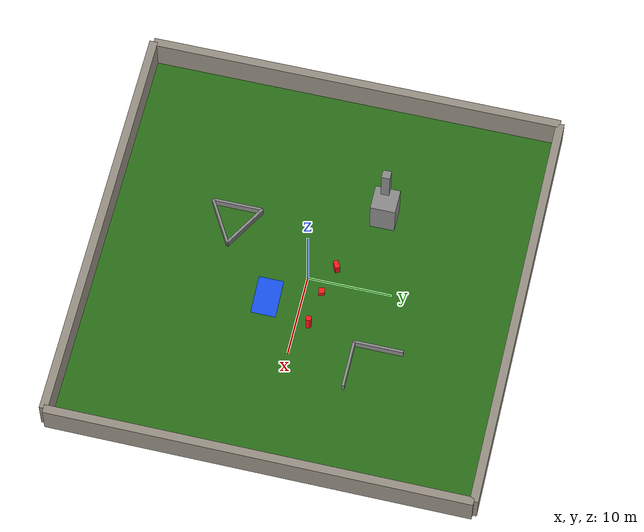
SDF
<?xml version="1.0" ?>
<sdf version="1.6">
  <world name="plane_fit_50x50">

    <!-- gz (Harmonic) core systems -->
    <plugin filename="gz-sim-physics-system" name="gz::sim::systems::Physics"/>
    <plugin filename="gz-sim-user-commands-system" name="gz::sim::systems::UserCommands"/>
    <plugin filename="gz-sim-scene-broadcaster-system" name="gz::sim::systems::SceneBroadcaster"/>
    <plugin filename="gz-sim-sensors-system" name="gz::sim::systems::Sensors">
      <render_engine>ogre2</render_engine>
    </plugin>
    <plugin filename="gz-sim-imu-system" name="gz::sim::systems::Imu"/>

    <gravity>0 0 -9.8</gravity>

    <light type="directional" name="sun">
      <cast_shadows>true</cast_shadows>
      <pose>0 0 10 0 0 0</pose>
      <diffuse>0.8 0.8 0.8 1</diffuse>
      <specular>0.2 0.2 0.2 1</specular>
      <direction>-0.5 0.1 -0.9</direction>
    </light>

    <physics name="1ms" type="ode">
      <max_step_size>0.001</max_step_size>
      <real_time_factor>1.0</real_time_factor>
      <real_time_update_rate>1000</real_time_update_rate>
    </physics>

    <scene>
      <ambient>0.65 0.65 0.65 1</ambient>
      <background>0.68 0.83 1.0 1</background>
      <shadows>true</shadows>
    </scene>

    <!-- 1) Ground: 기준 평면 z = 0, normal = [0, 0, 1] -->
    <model name="ground">
      <static>true</static>
      <pose>0 0 0 0 0 0</pose>
      <link name="link">
        <collision name="collision">
          <geometry><box><size>50 50 0.005</size></box></geometry>
        </collision>
        <visual name="visual">
          <cast_shadows>false</cast_shadows>
          <geometry><box><size>50 50 0.005</size></box></geometry>
          <material>
            <ambient>0.13 0.38 0.08 1</ambient>
            <diffuse>0.17 0.44 0.10 1</diffuse>
            <specular>0.01 0.01 0.01 1</specular>
          </material>
        </visual>
      </link>
    </model>

    <!-- 2) Outer walls: 수직 평면 비교용 -->
    <model name="wall_north">
      <static>true</static>
      <pose>0 25 2.0 0 0 0</pose>
      <link name="link">
        <collision name="collision"><geometry><box><size>50 1 4</size></box></geometry></collision>
        <visual name="visual">
          <cast_shadows>false</cast_shadows>
          <geometry><box><size>50 1 4</size></box></geometry>
          <material><ambient>0.52 0.50 0.46 1</ambient><diffuse>0.60 0.57 0.52 1</diffuse></material>
        </visual>
      </link>
    </model>

    <model name="wall_south">
      <static>true</static>
      <pose>0 -25 2.0 0 0 0</pose>
      <link name="link">
        <collision name="collision"><geometry><box><size>50 1 4</size></box></geometry></collision>
        <visual name="visual">
          <cast_shadows>false</cast_shadows>
          <geometry><box><size>50 1 4</size></box></geometry>
          <material><ambient>0.52 0.50 0.46 1</ambient><diffuse>0.60 0.57 0.52 1</diffuse></material>
        </visual>
      </link>
    </model>

    <model name="wall_east">
      <static>true</static>
      <pose>25 0 2.0 0 0 0</pose>
      <link name="link">
        <collision name="collision"><geometry><box><size>1 50 4</size></box></geometry></collision>
        <visual name="visual">
          <cast_shadows>false</cast_shadows>
          <geometry><box><size>1 50 4</size></box></geometry>
          <material><ambient>0.52 0.50 0.46 1</ambient><diffuse>0.60 0.57 0.52 1</diffuse></material>
        </visual>
      </link>
    </model>

    <model name="wall_west">
      <static>true</static>
      <pose>-25 0 2.0 0 0 0</pose>
      <link name="link">
        <collision name="collision"><geometry><box><size>1 50 4</size></box></geometry></collision>
        <visual name="visual">
          <cast_shadows>false</cast_shadows>
          <geometry><box><size>1 50 4</size></box></geometry>
          <material><ambient>0.52 0.50 0.46 1</ambient><diffuse>0.60 0.57 0.52 1</diffuse></material>
        </visual>
      </link>
    </model>

    <!-- 기존 L자 벽: outlier 및 수직 구조물 -->
    <model name="l_wall_horizontal">
      <static>true</static>
      <pose>10.071 7.221 0.5 0 0 0</pose>
      <link name="link">
        <collision name="collision"><geometry><box><size>6.0 0.3 1.0</size></box></geometry></collision>
        <visual name="visual">
          <cast_shadows>false</cast_shadows>
          <geometry><box><size>6.0 0.3 1.0</size></box></geometry>
          <material><ambient>0.45 0.45 0.45 1</ambient><diffuse>0.55 0.55 0.55 1</diffuse></material>
        </visual>
      </link>
    </model>

    <model name="l_wall_vertical">
      <static>true</static>
      <pose>7.221 10.071 0.5 0 0 0</pose>
      <link name="link">
        <collision name="collision"><geometry><box><size>0.3 6.0 1.0</size></box></geometry></collision>
        <visual name="visual">
          <cast_shadows>false</cast_shadows>
          <geometry><box><size>0.3 6.0 1.0</size></box></geometry>
          <material><ambient>0.45 0.45 0.45 1</ambient><diffuse>0.55 0.55 0.55 1</diffuse></material>
        </visual>
      </link>
    </model>

    <!-- 기존 삼각형 벽: 복잡 구조물 -->
    <model name="tr_triangle_side_1">
      <static>true</static>
      <pose>-7.221 -10.221 0.5 0 0 1.57079632679</pose>
      <link name="link">
        <collision name="collision"><geometry><box><size>6.0 0.3 1.0</size></box></geometry></collision>
        <visual name="visual"><cast_shadows>false</cast_shadows><geometry><box><size>6.0 0.3 1.0</size></box></geometry><material><ambient>0.45 0.45 0.45 1</ambient><diffuse>0.55 0.55 0.55 1</diffuse></material></visual>
      </link>
    </model>

    <model name="tr_triangle_side_2">
      <static>true</static>
      <pose>-4.623 -8.721 0.5 0 0 -0.5235987756</pose>
      <link name="link">
        <collision name="collision"><geometry><box><size>6.0 0.3 1.0</size></box></geometry></collision>
        <visual name="visual"><cast_shadows>false</cast_shadows><geometry><box><size>6.0 0.3 1.0</size></box></geometry><material><ambient>0.45 0.45 0.45 1</ambient><diffuse>0.55 0.55 0.55 1</diffuse></material></visual>
      </link>
    </model>

    <model name="tr_triangle_side_3">
      <static>true</static>
      <pose>-4.623 -11.721 0.5 0 0 0.5235987756</pose>
      <link name="link">
        <collision name="collision"><geometry><box><size>6.0 0.3 1.0</size></box></geometry></collision>
        <visual name="visual"><cast_shadows>false</cast_shadows><geometry><box><size>6.0 0.3 1.0</size></box></geometry><material><ambient>0.45 0.45 0.45 1</ambient><diffuse>0.55 0.55 0.55 1</diffuse></material></visual>
      </link>
    </model>

    <!-- 3) 경사판: normal angle error 비교용. pitch = 15 deg -->
    <model name="fit_ramp_15deg">
      <static>true</static>
      <pose>4.0 -4.0 0.45 0 0.2617993878 0</pose>
      <link name="link">
        <collision name="collision">
          <geometry><box><size>5.0 3.0 0.08</size></box></geometry>
        </collision>
        <visual name="visual">
          <cast_shadows>false</cast_shadows>
          <geometry><box><size>5.0 3.0 0.08</size></box></geometry>
          <material>
            <ambient>0.1 0.25 0.85 1</ambient>
            <diffuse>0.1 0.35 1.0 1</diffuse>
          </material>
        </visual>
      </link>
    </model>

    <!-- 4) 작은 장애물: outlier 역할 -->
    <model name="outlier_box_1">
      <static>true</static>
      <pose>1.5 2.0 0.35 0 0 0.2</pose>
      <link name="link">
        <collision name="collision"><geometry><box><size>0.7 0.7 0.7</size></box></geometry></collision>
        <visual name="visual"><cast_shadows>false</cast_shadows><geometry><box><size>0.7 0.7 0.7</size></box></geometry><material><ambient>0.8 0.1 0.1 1</ambient><diffuse>1.0 0.1 0.1 1</diffuse></material></visual>
      </link>
    </model>

    <model name="outlier_box_2">
      <static>true</static>
      <pose>-2.0 3.0 0.6 0 0 0.5</pose>
      <link name="link">
        <collision name="collision"><geometry><box><size>1.0 0.6 1.2</size></box></geometry></collision>
        <visual name="visual"><cast_shadows>false</cast_shadows><geometry><box><size>1.0 0.6 1.2</size></box></geometry><material><ambient>0.8 0.1 0.1 1</ambient><diffuse>1.0 0.1 0.1 1</diffuse></material></visual>
      </link>
    </model>

    <model name="outlier_column">
      <static>true</static>
      <pose>6.0 1.5 1.0 0 0 0</pose>
      <link name="link">
        <collision name="collision"><geometry><cylinder><radius>0.35</radius><length>2.0</length></cylinder></geometry></collision>
        <visual name="visual"><cast_shadows>false</cast_shadows><geometry><cylinder><radius>0.35</radius><length>2.0</length></cylinder></geometry><material><ambient>0.8 0.1 0.1 1</ambient><diffuse>1.0 0.1 0.1 1</diffuse></material></visual>
      </link>
    </model>

    <!-- 기존 tree는 크기가 너무 커서 피팅 결과를 과도하게 방해할 수 있으므로 위치를 유지하되 이름만 관측 장애물로 사용 -->
    <model name="tree">
      <static>true</static>
      <pose>-10.0 7.0 0.5 0 0 0</pose>
      <link name="link">
        <collision name="collision"><geometry><box><size>3.0 3.0 8.0</size></box></geometry></collision>
        <visual name="visual"><cast_shadows>false</cast_shadows><geometry><box><size>3.0 3.0 8.0</size></box></geometry><material><ambient>0.45 0.45 0.45 1</ambient><diffuse>0.55 0.55 0.55 1</diffuse></material></visual>
      </link>
    </model>

    <model name="tree_2">
      <static>true</static>
      <pose>-10.0 7.0 8.5 0 0 0</pose>
      <link name="link">
        <collision name="collision"><geometry><box><size>1.0 1.0 4.0</size></box></geometry></collision>
        <visual name="visual"><cast_shadows>false</cast_shadows><geometry><box><size>1.0 1.0 4.0</size></box></geometry><material><ambient>0.45 0.45 0.45 1</ambient><diffuse>0.55 0.55 0.55 1</diffuse></material></visual>
      </link>
    </model>

  </world>
</sdf>
